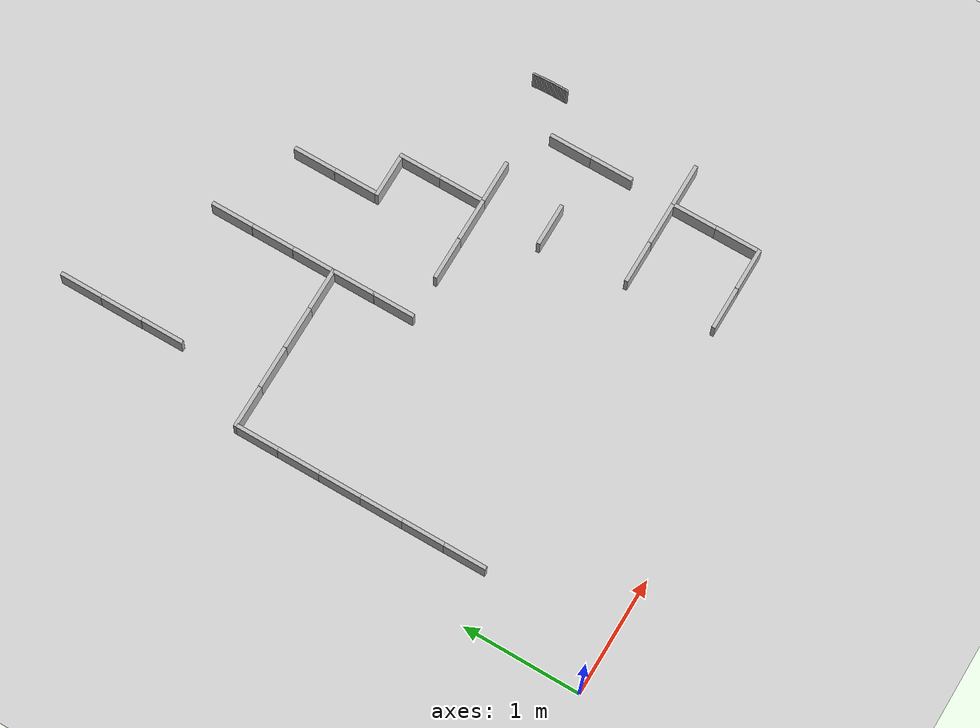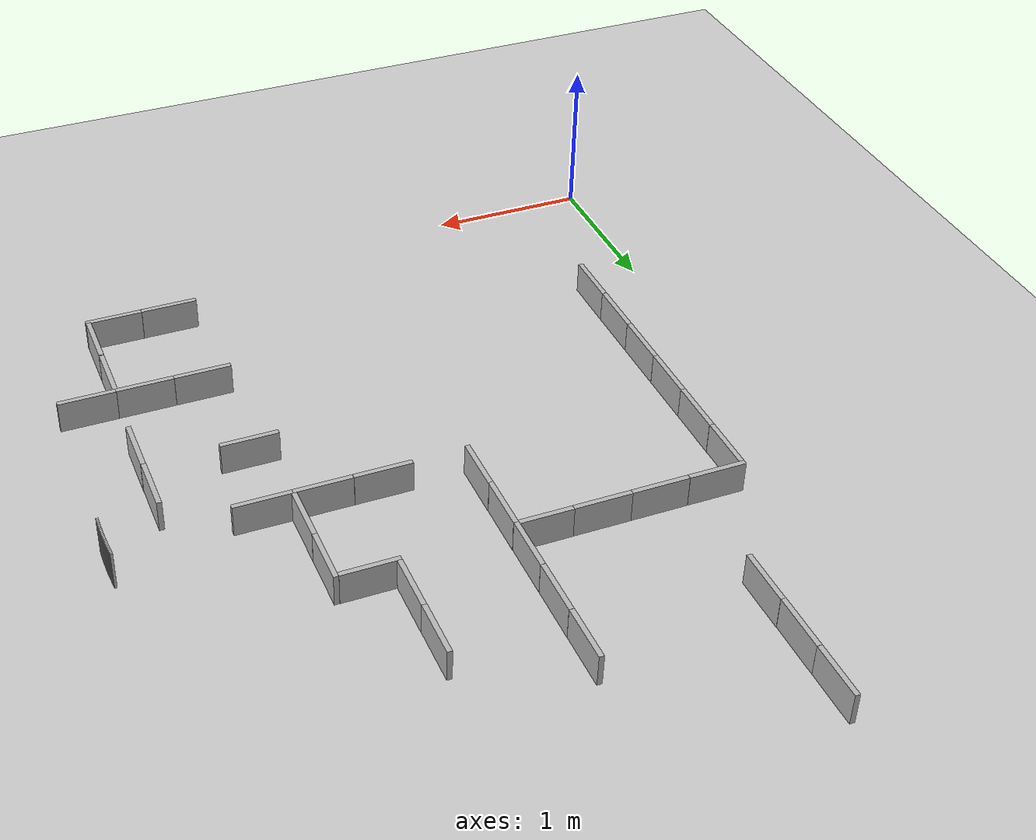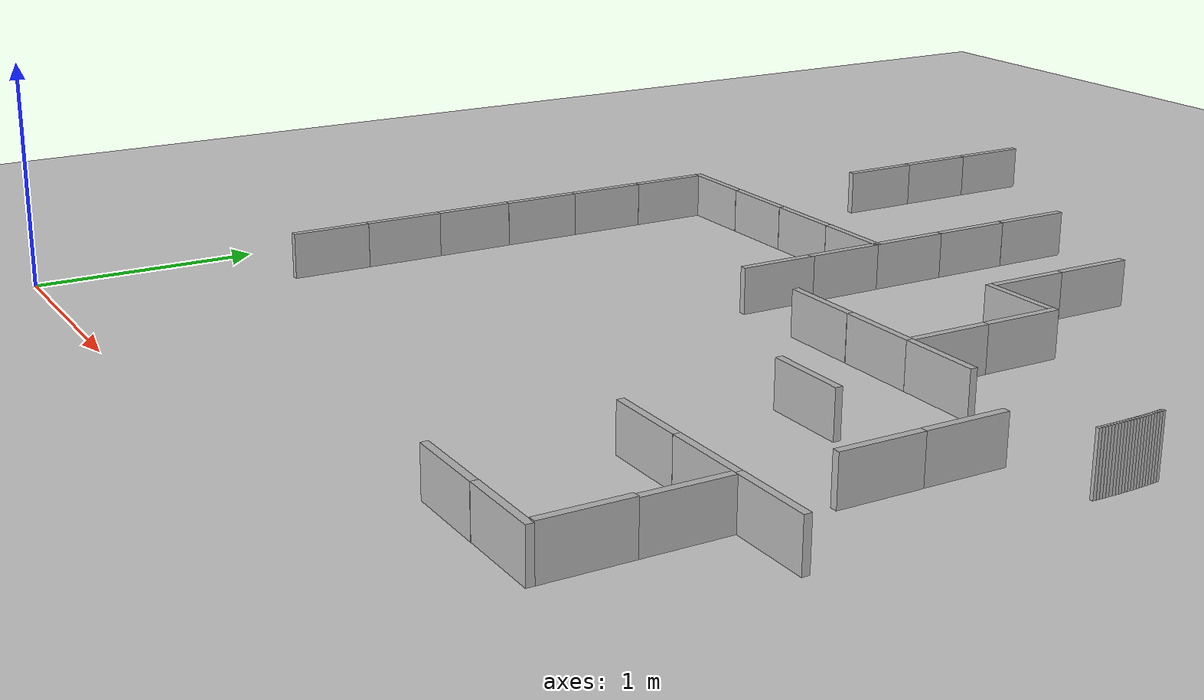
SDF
<sdf version="1.6">
 <world name="base">
  <include><uri>model://sun</uri></include>
  <include><uri>model://ground_plane</uri></include>
  <model name="k404">
   <link name="275_link">
    <collision name="collision_275">
     <pose>3.9904438751497944 2.718378810164532 0 0 -0 0</pose>
     <geometry><box><size>0.015 0.015 0.50</size></box></geometry>
    </collision>
    <visual name="visual_275">
     <pose>3.9904438751497944 2.718378810164532 0 0 -0 0</pose>
     <geometry><box><size>0.015 0.015 0.50</size></box></geometry>
    </visual>
   </link>
   <link name="276_link">
    <collision name="collision_276">
     <pose>3.991618651844006 2.7045397119951424 0 0 -0 0</pose>
     <geometry><box><size>0.015 0.015 0.50</size></box></geometry>
    </collision>
    <visual name="visual_276">
     <pose>3.991618651844006 2.7045397119951424 0 0 -0 0</pose>
     <geometry><box><size>0.015 0.015 0.50</size></box></geometry>
    </visual>
   </link>
   <link name="277_link">
    <collision name="collision_277">
     <pose>3.9927165269257694 2.690694300887916 0 0 -0 0</pose>
     <geometry><box><size>0.015 0.015 0.50</size></box></geometry>
    </collision>
    <visual name="visual_277">
     <pose>3.9927165269257694 2.690694300887916 0 0 -0 0</pose>
     <geometry><box><size>0.015 0.015 0.50</size></box></geometry>
    </visual>
   </link>
   <link name="278_link">
    <collision name="collision_278">
     <pose>3.993737466510136 2.6768430041692572 0 0 -0 0</pose>
     <geometry><box><size>0.015 0.015 0.50</size></box></geometry>
    </collision>
    <visual name="visual_278">
     <pose>3.993737466510136 2.6768430041692572 0 0 -0 0</pose>
     <geometry><box><size>0.015 0.015 0.50</size></box></geometry>
    </visual>
   </link>
   <link name="279_link">
    <collision name="collision_279">
     <pose>3.9946814390867074 2.662986249347224 0 0 -0 0</pose>
     <geometry><box><size>0.015 0.015 0.50</size></box></geometry>
    </collision>
    <visual name="visual_279">
     <pose>3.9946814390867074 2.662986249347224 0 0 -0 0</pose>
     <geometry><box><size>0.015 0.015 0.50</size></box></geometry>
    </visual>
   </link>
   <link name="280_link">
    <collision name="collision_280">
     <pose>3.9955484155206014 2.6491244640983345 0 0 -0 0</pose>
     <geometry><box><size>0.015 0.015 0.50</size></box></geometry>
    </collision>
    <visual name="visual_280">
     <pose>3.9955484155206014 2.6491244640983345 0 0 -0 0</pose>
     <geometry><box><size>0.015 0.015 0.50</size></box></geometry>
    </visual>
   </link>
   <link name="281_link">
    <collision name="collision_281">
     <pose>3.9963383690533556 2.6352580762543663 0 0 -0 0</pose>
     <geometry><box><size>0.015 0.015 0.50</size></box></geometry>
    </collision>
    <visual name="visual_281">
     <pose>3.9963383690533556 2.6352580762543663 0 0 -0 0</pose>
     <geometry><box><size>0.015 0.015 0.50</size></box></geometry>
    </visual>
   </link>
   <link name="282_link">
    <collision name="collision_282">
     <pose>3.997051275303751 2.621387513789152 0 0 -0 0</pose>
     <geometry><box><size>0.015 0.015 0.50</size></box></geometry>
    </collision>
    <visual name="visual_282">
     <pose>3.997051275303751 2.621387513789152 0 0 -0 0</pose>
     <geometry><box><size>0.015 0.015 0.50</size></box></geometry>
    </visual>
   </link>
   <link name="283_link">
    <collision name="collision_283">
     <pose>3.997687112268564 2.607513204805371 0 0 -0 0</pose>
     <geometry><box><size>0.015 0.015 0.50</size></box></geometry>
    </collision>
    <visual name="visual_283">
     <pose>3.997687112268564 2.607513204805371 0 0 -0 0</pose>
     <geometry><box><size>0.015 0.015 0.50</size></box></geometry>
    </visual>
   </link>
   <link name="284_link">
    <collision name="collision_284">
     <pose>3.998245860323248 2.5936355775213333 0 0 -0 0</pose>
     <geometry><box><size>0.015 0.015 0.50</size></box></geometry>
    </collision>
    <visual name="visual_284">
     <pose>3.998245860323248 2.5936355775213333 0 0 -0 0</pose>
     <geometry><box><size>0.015 0.015 0.50</size></box></geometry>
    </visual>
   </link>
   <link name="285_link">
    <collision name="collision_285">
     <pose>3.998727502222537 2.579755060257769 0 0 -0 0</pose>
     <geometry><box><size>0.015 0.015 0.50</size></box></geometry>
    </collision>
    <visual name="visual_285">
     <pose>3.998727502222537 2.579755060257769 0 0 -0 0</pose>
     <geometry><box><size>0.015 0.015 0.50</size></box></geometry>
    </visual>
   </link>
   <link name="286_link">
    <collision name="collision_286">
     <pose>3.999132023100979 2.565872081424602 0 0 -0 0</pose>
     <geometry><box><size>0.015 0.015 0.50</size></box></geometry>
    </collision>
    <visual name="visual_286">
     <pose>3.999132023100979 2.565872081424602 0 0 -0 0</pose>
     <geometry><box><size>0.015 0.015 0.50</size></box></geometry>
    </visual>
   </link>
   <link name="287_link">
    <collision name="collision_287">
     <pose>3.9994594104733925 2.551987069507731 0 0 -0 0</pose>
     <geometry><box><size>0.015 0.015 0.50</size></box></geometry>
    </collision>
    <visual name="visual_287">
     <pose>3.9994594104733925 2.551987069507731 0 0 -0 0</pose>
     <geometry><box><size>0.015 0.015 0.50</size></box></geometry>
    </visual>
   </link>
   <link name="288_link">
    <collision name="collision_288">
     <pose>3.999709654235256 2.538100453055805 0 0 -0 0</pose>
     <geometry><box><size>0.015 0.015 0.50</size></box></geometry>
    </collision>
    <visual name="visual_288">
     <pose>3.999709654235256 2.538100453055805 0 0 -0 0</pose>
     <geometry><box><size>0.015 0.015 0.50</size></box></geometry>
    </visual>
   </link>
   <link name="289_link">
    <collision name="collision_289">
     <pose>3.9998827466630162 2.524212660666994 0 0 -0 0</pose>
     <geometry><box><size>0.015 0.015 0.50</size></box></geometry>
    </collision>
    <visual name="visual_289">
     <pose>3.9998827466630162 2.524212660666994 0 0 -0 0</pose>
     <geometry><box><size>0.015 0.015 0.50</size></box></geometry>
    </visual>
   </link>
   <link name="290_link">
    <collision name="collision_290">
     <pose>3.9999786824143277 2.510324120975764 0 0 -0 0</pose>
     <geometry><box><size>0.015 0.015 0.50</size></box></geometry>
    </collision>
    <visual name="visual_290">
     <pose>3.9999786824143277 2.510324120975764 0 0 -0 0</pose>
     <geometry><box><size>0.015 0.015 0.50</size></box></geometry>
    </visual>
   </link>
   <link name="291_link">
    <collision name="collision_291">
     <pose>3.9999974585282185 2.4964352626396438 0 0 -0 0</pose>
     <geometry><box><size>0.015 0.015 0.50</size></box></geometry>
    </collision>
    <visual name="visual_291">
     <pose>3.9999974585282185 2.4964352626396438 0 0 -0 0</pose>
     <geometry><box><size>0.015 0.015 0.50</size></box></geometry>
    </visual>
   </link>
   <link name="292_link">
    <collision name="collision_292">
     <pose>3.99993907442518 2.482546514325999 0 0 -0 0</pose>
     <geometry><box><size>0.015 0.015 0.50</size></box></geometry>
    </collision>
    <visual name="visual_292">
     <pose>3.99993907442518 2.482546514325999 0 0 -0 0</pose>
     <geometry><box><size>0.015 0.015 0.50</size></box></geometry>
    </visual>
   </link>
   <link name="293_link">
    <collision name="collision_293">
     <pose>3.999803531907187 2.468658304698798 0 0 -0 0</pose>
     <geometry><box><size>0.015 0.015 0.50</size></box></geometry>
    </collision>
    <visual name="visual_293">
     <pose>3.999803531907187 2.468658304698798 0 0 -0 0</pose>
     <geometry><box><size>0.015 0.015 0.50</size></box></geometry>
    </visual>
   </link>
   <link name="294_link">
    <collision name="collision_294">
     <pose>3.9995908351576386 2.454771062405384 0 0 -0 0</pose>
     <geometry><box><size>0.015 0.015 0.50</size></box></geometry>
    </collision>
    <visual name="visual_294">
     <pose>3.9995908351576386 2.454771062405384 0 0 -0 0</pose>
     <geometry><box><size>0.015 0.015 0.50</size></box></geometry>
    </visual>
   </link>
   <link name="295_link">
    <collision name="collision_295">
     <pose>3.9993009907412334 2.4408852160632426 0 0 -0 0</pose>
     <geometry><box><size>0.015 0.015 0.50</size></box></geometry>
    </collision>
    <visual name="visual_295">
     <pose>3.9993009907412334 2.4408852160632426 0 0 -0 0</pose>
     <geometry><box><size>0.015 0.015 0.50</size></box></geometry>
    </visual>
   </link>
   <link name="296_link">
    <collision name="collision_296">
     <pose>3.9989340076037627 2.427001194246778 0 0 -0 0</pose>
     <geometry><box><size>0.015 0.015 0.50</size></box></geometry>
    </collision>
    <visual name="visual_296">
     <pose>3.9989340076037627 2.427001194246778 0 0 -0 0</pose>
     <geometry><box><size>0.015 0.015 0.50</size></box></geometry>
    </visual>
   </link>
   <static>true</static>
  </model>
  <model name="Placa1">
   <pose>2.732450 2.539440 0 0 0 1.57</pose>
   <static>1</static>
   <link name="link">
    <collision name="collision"><geometry><box><size>0.031694 0.360886 0.40006</size></box></geometry></collision>
    <visual name="visual"><geometry><box><size>0.031694 0.360886 0.40006</size></box></geometry></visual>
   </link>
  </model>
  <model name="Placa2">
   <pose>2.37015 2.53943 0 0 -0 1.57</pose>
   <static>1</static>
   <link name="link">
    <collision name="collision"><geometry><box><size>0.031694 0.360886 0.40006</size></box></geometry></collision>
    <visual name="visual"><geometry><box><size>0.031694 0.360886 0.40006</size></box></geometry></visual>
   </link>
  </model>
  <model name="Placa3">
   <pose>3.09221 2.53943 0 0 -0 1.57</pose>
   <static>1</static>
   <link name="link">
    <collision name="collision"><geometry><box><size>0.031694 0.360886 0.40006</size></box></geometry></collision>
    <visual name="visual"><geometry><box><size>0.031694 0.360886 0.40006</size></box></geometry></visual>
   </link>
  </model>
  <model name="Placa4">
   <pose>3.80692 1.2774 0 0 -0 1.57</pose>
   <static>1</static>
   <link name="link">
    <collision name="collision"><geometry><box><size>0.031694 0.360886 0.40006</size></box></geometry></collision>
    <visual name="visual"><geometry><box><size>0.031694 0.360886 0.40006</size></box></geometry></visual>
   </link>
  </model>
  <model name="Placa5">
   <pose>3.08648 1.27706 0 0 -0 1.57</pose>
   <static>1</static>
   <link name="link">
    <collision name="collision"><geometry><box><size>0.031694 0.360886 0.40006</size></box></geometry></collision>
    <visual name="visual"><geometry><box><size>0.031694 0.360886 0.40006</size></box></geometry></visual>
   </link>
  </model>
  <model name="Placa6">
   <pose>3.44758 1.27708 0 0 -0 1.57</pose>
   <static>1</static>
   <link name="link">
    <collision name="collision"><geometry><box><size>0.031694 0.360886 0.40006</size></box></geometry></collision>
    <visual name="visual"><geometry><box><size>0.031694 0.360886 0.40006</size></box></geometry></visual>
   </link>
  </model>
  <model name="Placa7">
   <pose>3.463822 0.526993 0 0 -0 1.57</pose>
   <static>1</static>
   <link name="link">
    <collision name="collision"><geometry><box><size>0.031694 0.360886 0.40006</size></box></geometry></collision>
    <visual name="visual"><geometry><box><size>0.031694 0.360886 0.40006</size></box></geometry></visual>
   </link>
  </model>
  <model name="Placa8">
   <pose>3.10234 0.526452 0 0 -0 1.57</pose>
   <static>1</static>
   <link name="link">
    <collision name="collision"><geometry><box><size>0.031694 0.360886 0.40006</size></box></geometry></collision>
    <visual name="visual"><geometry><box><size>0.031694 0.360886 0.40006</size></box></geometry></visual>
   </link>
  </model>
  <model name="Placa9">
   <pose>3.00567 2.00183 0 0 -0 1.57</pose>
   <static>1</static>
   <link name="link">
    <collision name="collision"><geometry><box><size>0.031694 0.360886 0.40006</size></box></geometry></collision>
    <visual name="visual"><geometry><box><size>0.031694 0.360886 0.40006</size></box></geometry></visual>
   </link>
  </model>
  <model name="Placa10">
   <pose>0.427226 1.59754 0 0 -0 0</pose>
   <static>1</static>
   <link name="link">
    <collision name="collision"><geometry><box><size>0.031694 0.360886 0.40006</size></box></geometry></collision>
    <visual name="visual"><geometry><box><size>0.031694 0.360886 0.40006</size></box></geometry></visual>
   </link>
  </model>
  <model name="Placa11">
   <pose>0.590901 3.23044 0 0 -0 1.57</pose>
   <static>1</static>
   <link name="link">
    <collision name="collision"><geometry><box><size>0.031694 0.360886 0.40006</size></box></geometry></collision>
    <visual name="visual"><geometry><box><size>0.031694 0.360886 0.40006</size></box></geometry></visual>
   </link>
  </model>
  <model name="Placa12">
   <pose>0.952624 3.23037 0 0 -0 1.57</pose>
   <static>1</static>
   <link name="link">
    <collision name="collision"><geometry><box><size>0.031694 0.360886 0.40006</size></box></geometry></collision>
    <visual name="visual"><geometry><box><size>0.031694 0.360886 0.40006</size></box></geometry></visual>
   </link>
  </model>
  <model name="Placa13">
   <pose>1.31389 3.23073 0 0 -0 1.57</pose>
   <static>1</static>
   <link name="link">
    <collision name="collision"><geometry><box><size>0.031694 0.360886 0.40006</size></box></geometry></collision>
    <visual name="visual"><geometry><box><size>0.031694 0.360886 0.40006</size></box></geometry></visual>
   </link>
  </model>
  <model name="Placa14">
   <pose>1.6744 3.23121 0 0 -0 1.57</pose>
   <static>1</static>
   <link name="link">
    <collision name="collision"><geometry><box><size>0.031694 0.360886 0.40006</size></box></geometry></collision>
    <visual name="visual"><geometry><box><size>0.031694 0.360886 0.40006</size></box></geometry></visual>
   </link>
  </model>
  <model name="Placa15">
   <pose>2.71226 3.26281 0 0 -0 1.57</pose>
   <static>1</static>
   <link name="link">
    <collision name="collision"><geometry><box><size>0.031694 0.360886 0.40006</size></box></geometry></collision>
    <visual name="visual"><geometry><box><size>0.031694 0.360886 0.40006</size></box></geometry></visual>
   </link>
  </model>
  <model name="Placa16">
   <pose>0.42662 1.95843 0 0 -0 0</pose>
   <static>1</static>
   <link name="link">
    <collision name="collision"><geometry><box><size>0.031694 0.360886 0.40006</size></box></geometry></collision>
    <visual name="visual"><geometry><box><size>0.031694 0.360886 0.40006</size></box></geometry></visual>
   </link>
  </model>
  <model name="Placa17">
   <pose>0.426106 2.32 0 0 -0 0</pose>
   <static>1</static>
   <link name="link">
    <collision name="collision"><geometry><box><size>0.031694 0.360886 0.40006</size></box></geometry></collision>
    <visual name="visual"><geometry><box><size>0.031694 0.360886 0.40006</size></box></geometry></visual>
   </link>
  </model>
  <model name="Placa18">
   <pose>0.425915 2.68095 0 0 -0 0</pose>
   <static>1</static>
   <link name="link">
    <collision name="collision"><geometry><box><size>0.031694 0.360886 0.40006</size></box></geometry></collision>
    <visual name="visual"><geometry><box><size>0.031694 0.360886 0.40006</size></box></geometry></visual>
   </link>
  </model>
  <model name="Placa19">
   <pose>0.425298 3.04244 0 0 -0 0</pose>
   <static>1</static>
   <link name="link">
    <collision name="collision"><geometry><box><size>0.031694 0.360886 0.40006</size></box></geometry></collision>
    <visual name="visual"><geometry><box><size>0.031694 0.360886 0.40006</size></box></geometry></visual>
   </link>
  </model>
  <model name="Placa20">
   <pose>0.427425 1.23641 0 0 -0 0</pose>
   <static>1</static>
   <link name="link">
    <collision name="collision"><geometry><box><size>0.031694 0.360886 0.40006</size></box></geometry></collision>
    <visual name="visual"><geometry><box><size>0.031694 0.360886 0.40006</size></box></geometry></visual>
   </link>
  </model>
  <model name="Placa21">
   <pose>1.8406 3.7661 0 0 -0 0</pose>
   <static>1</static>
   <link name="link">
    <collision name="collision"><geometry><box><size>0.031694 0.360886 0.40006</size></box></geometry></collision>
    <visual name="visual"><geometry><box><size>0.031694 0.360886 0.40006</size></box></geometry></visual>
   </link>
  </model>
  <model name="Placa22">
   <pose>1.84017 4.12777 0 0 -0 0</pose>
   <static>1</static>
   <link name="link">
    <collision name="collision"><geometry><box><size>0.031694 0.360886 0.40006</size></box></geometry></collision>
    <visual name="visual"><geometry><box><size>0.031694 0.360886 0.40006</size></box></geometry></visual>
   </link>
  </model>
  <model name="Placa23">
   <pose>2.90911 2.736 0 0 -0 0</pose>
   <static>1</static>
   <link name="link">
    <collision name="collision"><geometry><box><size>0.031694 0.360886 0.40006</size></box></geometry></collision>
    <visual name="visual"><geometry><box><size>0.031694 0.360886 0.40006</size></box></geometry></visual>
   </link>
  </model>
  <model name="Placa24">
   <pose>2.90837 3.09687 0 0 -0 0</pose>
   <static>1</static>
   <link name="link">
    <collision name="collision"><geometry><box><size>0.031694 0.360886 0.40006</size></box></geometry></collision>
    <visual name="visual"><geometry><box><size>0.031694 0.360886 0.40006</size></box></geometry></visual>
   </link>
  </model>
  <model name="Placa25">
   <pose>3.63866 2.18269 0 0 -0 0</pose>
   <static>1</static>
   <link name="link">
    <collision name="collision"><geometry><box><size>0.031694 0.360886 0.40006</size></box></geometry></collision>
    <visual name="visual"><geometry><box><size>0.031694 0.360886 0.40006</size></box></geometry></visual>
   </link>
  </model>
  <model name="Placa26">
   <pose>3.64011 1.82321 0 0 -0 0</pose>
   <static>1</static>
   <link name="link">
    <collision name="collision"><geometry><box><size>0.031694 0.360886 0.40006</size></box></geometry></collision>
    <visual name="visual"><geometry><box><size>0.031694 0.360886 0.40006</size></box></geometry></visual>
   </link>
  </model>
  <model name="Placa27">
   <pose>3.62804 1.08185 0 0 -0 0</pose>
   <static>1</static>
   <link name="link">
    <collision name="collision"><geometry><box><size>0.031694 0.360886 0.40006</size></box></geometry></collision>
    <visual name="visual"><geometry><box><size>0.031694 0.360886 0.40006</size></box></geometry></visual>
   </link>
  </model>
  <model name="Placa28">
   <pose>3.62826 0.721652 0.005089 0 -0 0</pose>
   <static>1</static>
   <link name="link">
    <collision name="collision"><geometry><box><size>0.031694 0.360886 0.40006</size></box></geometry></collision>
    <visual name="visual"><geometry><box><size>0.031694 0.360886 0.40006</size></box></geometry></visual>
   </link>
  </model>
  <model name="Placa29">
   <pose>0.77105 4.45754 0 0 -0 0</pose>
   <static>1</static>
   <link name="link">
    <collision name="collision"><geometry><box><size>0.031694 0.360886 0.40006</size></box></geometry></collision>
    <visual name="visual"><geometry><box><size>0.031694 0.360886 0.40006</size></box></geometry></visual>
   </link>
  </model>
  <model name="Placa30">
   <pose>0.772762 4.09807 0 0 -0 0</pose>
   <static>1</static>
   <link name="link">
    <collision name="collision"><geometry><box><size>0.031694 0.360886 0.40006</size></box></geometry></collision>
    <visual name="visual"><geometry><box><size>0.031694 0.360886 0.40006</size></box></geometry></visual>
   </link>
  </model>
  <model name="Placa31">
   <pose>2.54622 3.45817 0 0 -0 0</pose>
   <static>1</static>
   <link name="link">
    <collision name="collision"><geometry><box><size>0.031694 0.360886 0.40006</size></box></geometry></collision>
    <visual name="visual"><geometry><box><size>0.031694 0.360886 0.40006</size></box></geometry></visual>
   </link>
  </model>
  <model name="Placa32">
   <pose>2.54547 3.81898 0 0 -0 0</pose>
   <static>1</static>
   <link name="link">
    <collision name="collision"><geometry><box><size>0.031694 0.360886 0.40006</size></box></geometry></collision>
    <visual name="visual"><geometry><box><size>0.031694 0.360886 0.40006</size></box></geometry></visual>
   </link>
  </model>
  <model name="Placa33">
   <pose>0.770965 4.81852 0 0 -0 0</pose>
   <static>1</static>
   <link name="link">
    <collision name="collision"><geometry><box><size>0.031694 0.360886 0.40006</size></box></geometry></collision>
    <visual name="visual"><geometry><box><size>0.031694 0.360886 0.40006</size></box></geometry></visual>
   </link>
  </model>
  <model name="Placa34">
   <pose>1.84115 3.40485 0 0 -0 0</pose>
   <static>1</static>
   <link name="link">
    <collision name="collision"><geometry><box><size>0.031694 0.360886 0.40006</size></box></geometry></collision>
    <visual name="visual"><geometry><box><size>0.031694 0.360886 0.40006</size></box></geometry></visual>
   </link>
  </model>
  <model name="Placa35">
   <pose>1.8425 3.04727 0 0 -0 0</pose>
   <static>1</static>
   <link name="link">
    <collision name="collision"><geometry><box><size>0.031694 0.360886 0.40006</size></box></geometry></collision>
    <visual name="visual"><geometry><box><size>0.031694 0.360886 0.40006</size></box></geometry></visual>
   </link>
  </model>
  <model name="Placa36">
   <pose>1.84372 2.70004 0 0 -0 0</pose>
   <static>1</static>
   <link name="link">
    <collision name="collision"><geometry><box><size>0.031694 0.360886 0.40006</size></box></geometry></collision>
    <visual name="visual"><geometry><box><size>0.031694 0.360886 0.40006</size></box></geometry></visual>
   </link>
  </model>
 </world>
</sdf>
